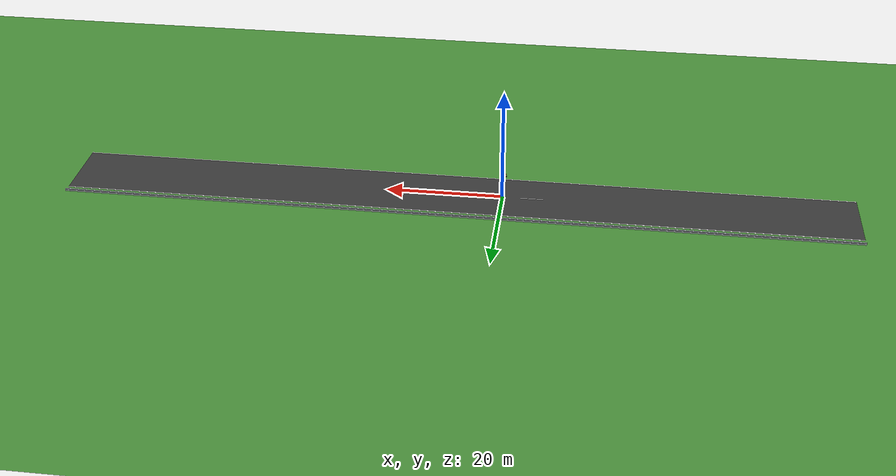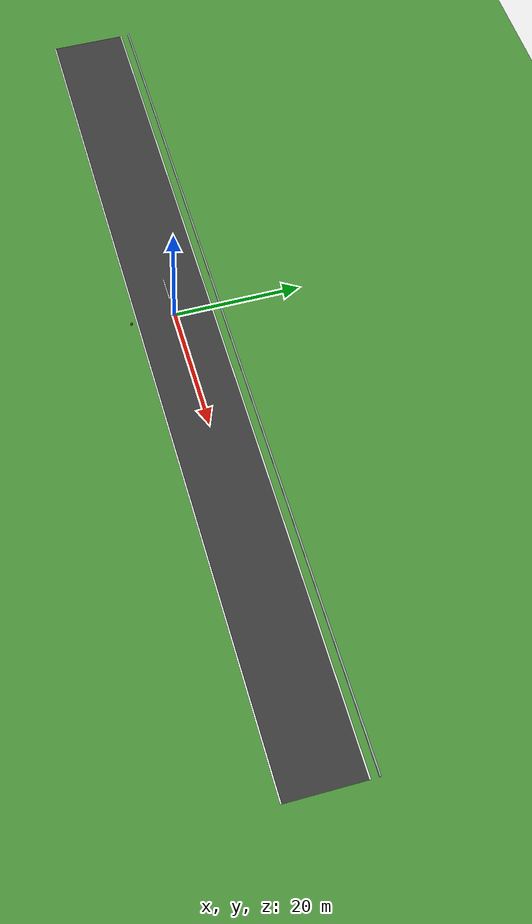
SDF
<sdf version="1.6">
 <world name="sem_silesia_ring_2026">
  <model name="ground_plane">
   <static>true</static>
   <link name="link">
    <collision name="collision">
     <geometry><plane><normal>0 0 1</normal><size>600 600</size></plane></geometry>
     <surface><friction><ode><mu>0.6</mu><mu2>0.6</mu2></ode></friction></surface>
    </collision>
    <visual name="visual">
     <geometry><plane><normal>0 0 1</normal><size>600 600</size></plane></geometry>
     <material><ambient>0.28 0.55 0.22 1</ambient><diffuse>0.28 0.55 0.22 1</diffuse></material>
    </visual>
   </link>
  </model>
  <model name="road_s1">
   <static>true</static>
   <pose>7.5000 0.0000 0.0030 0 0 0.0000</pose>
   <link name="link">
    <visual name="v">
     <geometry><box><size>135.0000 12.0000 0.0060</size></box></geometry>
     <material><ambient>0.22 0.22 0.22 1</ambient><diffuse>0.22 0.22 0.22 1</diffuse></material>
    </visual>
    <collision name="c">
     <geometry><box><size>135.0000 12.0000 0.0060</size></box></geometry>
     <surface><friction><ode><mu>0.9</mu><mu2>0.9</mu2></ode></friction></surface>
    </collision>
   </link>
  </model>
  <model name="wl_s1_n">
   <static>true</static>
   <pose>7.5000 5.9000 0.0050 0 0 0.0000</pose>
   <link name="link">
    <visual name="v">
     <geometry><box><size>135.0000 0.2000 0.0080</size></box></geometry>
     <material><ambient>1 1 1 1</ambient><diffuse>1 1 1 1</diffuse></material>
    </visual>
    <collision name="c">
     <geometry><box><size>135.0000 0.2000 0.0080</size></box></geometry>
     <surface><friction><ode><mu>0.9</mu><mu2>0.9</mu2></ode></friction></surface>
    </collision>
   </link>
  </model>
  <model name="wl_s1_s">
   <static>true</static>
   <pose>7.5000 -5.9000 0.0050 0 0 0.0000</pose>
   <link name="link">
    <visual name="v">
     <geometry><box><size>135.0000 0.2000 0.0080</size></box></geometry>
     <material><ambient>1 1 1 1</ambient><diffuse>1 1 1 1</diffuse></material>
    </visual>
    <collision name="c">
     <geometry><box><size>135.0000 0.2000 0.0080</size></box></geometry>
     <surface><friction><ode><mu>0.9</mu><mu2>0.9</mu2></ode></friction></surface>
    </collision>
   </link>
  </model>
  <model name="cd_s1_5">
   <static>true</static>
   <pose>-5.0000 0.0000 0.0050 0 0 0.0000</pose>
   <link name="link">
    <visual name="v">
     <geometry><box><size>4.0000 0.1500 0.0080</size></box></geometry>
     <material><ambient>1 1 1 1</ambient><diffuse>1 1 1 1</diffuse></material>
    </visual>
    <collision name="c">
     <geometry><box><size>4.0000 0.1500 0.0080</size></box></geometry>
     <surface><friction><ode><mu>0.9</mu><mu2>0.9</mu2></ode></friction></surface>
    </collision>
   </link>
  </model>
  <model name="arm_s1_n_main">
   <static>true</static>
   <pose>7.5000 7.2000 0.2250 0 0 0.0000</pose>
   <link name="link">
    <visual name="v">
     <geometry><box><size>135.0000 0.2000 0.4500</size></box></geometry>
     <material><ambient>0.70 0.72 0.74 1</ambient><diffuse>0.70 0.72 0.74 1</diffuse></material>
    </visual>
    <collision name="c">
     <geometry><box><size>135.0000 0.2000 0.4500</size></box></geometry>
     <surface><friction><ode><mu>0.9</mu><mu2>0.9</mu2></ode></friction></surface>
    </collision>
   </link>
  </model>
  <model name="arm_s1_n_rib1">
   <static>true</static>
   <pose>7.5000 7.2000 0.2750 0 0 0.0000</pose>
   <link name="link">
    <visual name="v">
     <geometry><box><size>135.0000 0.2200 0.0800</size></box></geometry>
     <material><ambient>0.70 0.72 0.74 1</ambient><diffuse>0.70 0.72 0.74 1</diffuse></material>
    </visual>
    <collision name="c">
     <geometry><box><size>135.0000 0.2200 0.0800</size></box></geometry>
     <surface><friction><ode><mu>0.9</mu><mu2>0.9</mu2></ode></friction></surface>
    </collision>
   </link>
  </model>
  <model name="arm_s1_n_rib2">
   <static>true</static>
   <pose>7.5000 7.2000 0.3750 0 0 0.0000</pose>
   <link name="link">
    <visual name="v">
     <geometry><box><size>135.0000 0.2200 0.0800</size></box></geometry>
     <material><ambient>0.70 0.72 0.74 1</ambient><diffuse>0.70 0.72 0.74 1</diffuse></material>
    </visual>
    <collision name="c">
     <geometry><box><size>135.0000 0.2200 0.0800</size></box></geometry>
     <surface><friction><ode><mu>0.9</mu><mu2>0.9</mu2></ode></friction></surface>
    </collision>
   </link>
  </model>
  <model name="cn_s1n_0">
   <static>true</static>
   <pose>0.0000 6.8000 0 0 0 0</pose>
   <link name="link">
    <visual name="base">
     <pose>0 0 0.03 0 0 0</pose>
     <geometry><box><size>0.35 0.35 0.06</size></box></geometry>
     <material><ambient>0.08 0.08 0.08 1</ambient><diffuse>0.08 0.08 0.08 1</diffuse></material>
    </visual>
    <visual name="body">
     <pose>0 0 0.30 0 0 0</pose>
     <geometry><cylinder><radius>0.09</radius><length>0.50</length></cylinder></geometry>
     <material><ambient>1.0 0.38 0.0 1</ambient><diffuse>1.0 0.38 0.0 1</diffuse></material>
    </visual>
    <visual name="stripe">
     <pose>0 0 0.32 0 0 0</pose>
     <geometry><cylinder><radius>0.095</radius><length>0.12</length></cylinder></geometry>
     <material><ambient>1 1 1 1</ambient><diffuse>1 1 1 1</diffuse></material>
    </visual>
    <visual name="tip">
     <pose>0 0 0.57 0 0 0</pose>
     <geometry><sphere><radius>0.04</radius></sphere></geometry>
     <material><ambient>1.0 0.38 0.0 1</ambient><diffuse>1.0 0.38 0.0 1</diffuse></material>
    </visual>
    <collision name="c">
     <pose>0 0 0.28 0 0 0</pose>
     <geometry><cylinder><radius>0.09</radius><length>0.56</length></cylinder></geometry>
    </collision>
   </link>
  </model>
  <model name="cn_s1s_0">
   <static>true</static>
   <pose>0.0000 -6.8000 0 0 0 0</pose>
   <link name="link">
    <visual name="base">
     <pose>0 0 0.03 0 0 0</pose>
     <geometry><box><size>0.35 0.35 0.06</size></box></geometry>
     <material><ambient>0.08 0.08 0.08 1</ambient><diffuse>0.08 0.08 0.08 1</diffuse></material>
    </visual>
    <visual name="body">
     <pose>0 0 0.30 0 0 0</pose>
     <geometry><cylinder><radius>0.09</radius><length>0.50</length></cylinder></geometry>
     <material><ambient>1.0 0.38 0.0 1</ambient><diffuse>1.0 0.38 0.0 1</diffuse></material>
    </visual>
    <visual name="stripe">
     <pose>0 0 0.32 0 0 0</pose>
     <geometry><cylinder><radius>0.095</radius><length>0.12</length></cylinder></geometry>
     <material><ambient>1 1 1 1</ambient><diffuse>1 1 1 1</diffuse></material>
    </visual>
    <visual name="tip">
     <pose>0 0 0.57 0 0 0</pose>
     <geometry><sphere><radius>0.04</radius></sphere></geometry>
     <material><ambient>1.0 0.38 0.0 1</ambient><diffuse>1.0 0.38 0.0 1</diffuse></material>
    </visual>
    <collision name="c">
     <pose>0 0 0.28 0 0 0</pose>
     <geometry><cylinder><radius>0.09</radius><length>0.56</length></cylinder></geometry>
    </collision>
   </link>
  </model>
 </world>
</sdf>
